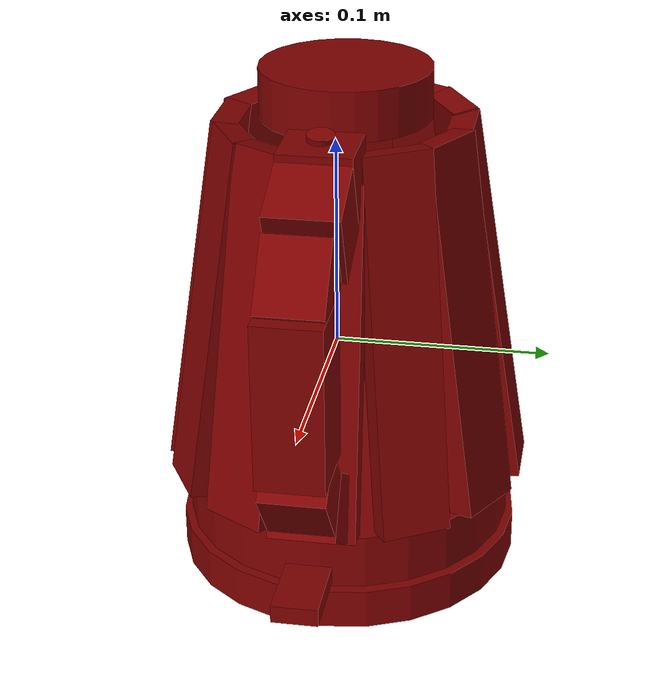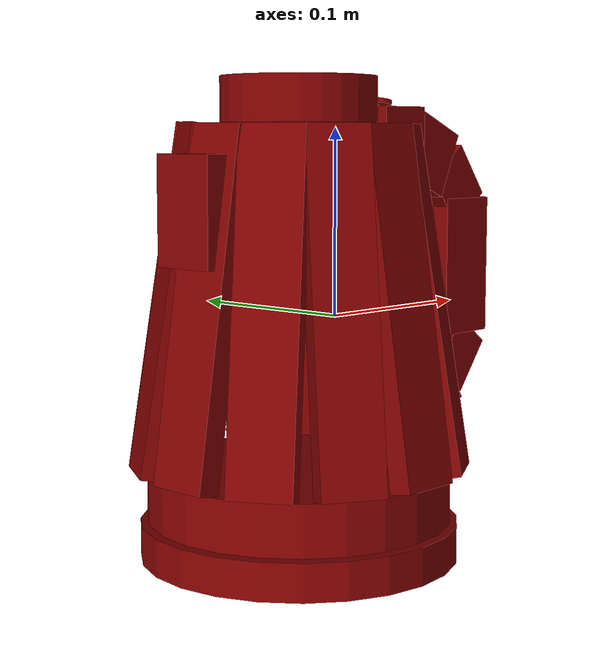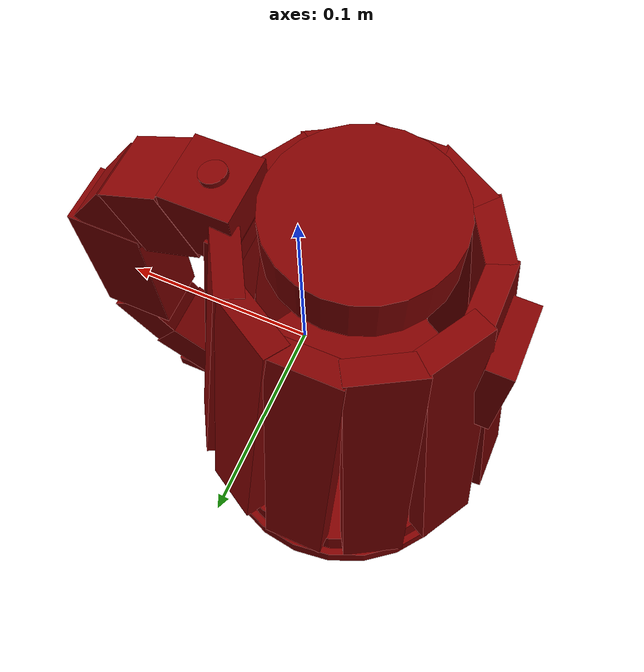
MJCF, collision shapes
<?xml version='1.0' encoding='UTF-8'?>
<mujoco model="model">
  <option timestep="0.002" gravity="0.0 0.0 -9.81"/>
  <compiler angle="radian"/>
  <asset>
    <mesh file="visuals/button_lid.obj" name="button_lid_vis"/>
    <mesh file="visuals/Body001.obj" name="Body001_vis"/>
    <mesh file="visuals/kettle_main.obj" name="kettle_main_vis"/>
    <mesh file="visuals/lid.obj" name="lid_vis"/>
    <mesh file="visuals/switch.obj" name="switch_vis"/>
    <texture file="visuals/T_BC001.png" name="Body001_material" type="2d"/>
    <material name="Body001_material" rgba="1 1 1 1.0" texture="Body001_material" shininess="0.1" specular="5"/>
    <texture file="visuals/T_BC001.png" name="kettle_main_material" type="2d"/>
    <material name="kettle_main_material" rgba="1 1 1 1.0" texture="kettle_main_material" shininess="0.1" specular="5"/>
    <texture file="visuals/T_BC001.png" name="button_lid_material" type="2d"/>
    <material name="button_lid_material" rgba="1 1 1 1.0" texture="button_lid_material" shininess="0.1" specular="5"/>
    <texture file="visuals/T_BC001.png" name="lid_material" type="2d"/>
    <material name="lid_material" rgba="1 1 1 1.0" texture="lid_material" shininess="0.1" specular="5"/>
    <texture file="visuals/T_BC001.png" name="switch_material" type="2d"/>
    <material name="switch_material" rgba="1 1 1 1.0" texture="switch_material" shininess="0.1" specular="5"/>
  </asset>
  <default>
    <default class="visual">
      <geom conaffinity="0" contype="0" group="1" type="mesh"/>
    </default>
    <default class="collision">
      <geom group="0" rgba="0.5 0 0 0.5"/>
    </default>
    <default class="spawn">
      <geom group="0" rgba="1 1 1 0.5" contype="0" conaffinity="0"/>
      <site group="0" rgba="1 1 1 0.5"/>
    </default>
    <default class="region">
      <geom group="1" conaffinity="0" contype="0" rgba="0 1 0 0" mass="0"/>
    </default>
  </default>
  <worldbody>
    <body>
      <body name="object">
        <geom mesh="Body001_vis" type="mesh" solimp="0.998 0.998 0.001" solref="0.001 1" friction="0.95 0.3 0.1" class="visual" material="Body001_material"/>
        <geom type="cylinder" pos="-0.027123715728521347 0.0006314236670732498 -0.11536509543657303" size="0.0840601013302803 0.009835515171289444" quat="1.0 0.0 0.0 0.0" class="collision"/>
        <body name="kettle_main">
          <geom mesh="kettle_main_vis" type="mesh" solimp="0.998 0.998 0.001" solref="0.001 1" friction="0.95 0.3 0.1" class="visual" material="kettle_main_material"/>
          <geom type="cylinder" pos="-0.027123715728521347 0.0006314236670732498 -0.09106379747390747" size="0.08028148114681244 0.013414045795798302" quat="1.0 0.0 0.0 0.0" class="collision"/>
          <geom type="box" pos="-0.029719935730099678 0.0678422674536705 0.01245046965777874" size="0.01667201519012451 0.00625108927488327 0.08973126858472824" quat="0.9969461560249329 0.07809212803840637 0.0 0.0" class="collision"/>
          <geom type="box" pos="0.0044008586555719376 0.05956077575683594 0.012839394621551037" size="0.01667201519012451 0.00625108927488327 0.09012499451637268" quat="0.9629760384559631 0.0754312127828598 -0.020211733877658844 -0.25802865624427795" class="collision"/>
          <geom type="box" pos="0.02979552559554577 0.03535568341612816 0.01316695287823677" size="0.01667201519012451 0.006251089740544558 0.09045659750699997" quat="0.8633805513381958 0.06762980669736862 -0.03904610499739647 -0.49847328662872314" class="collision"/>
          <geom type="box" pos="0.04109631106257439 0.001721933949738741 0.00760232238098979" size="0.01667201519012451 0.006734172813594341 0.08474710583686829" quat="0.7049473524093628 0.055219486355781555 -0.055219486355781555 -0.7049474120140076" class="collision"/>
          <geom type="box" pos="0.031629934906959534 -0.032438334077596664 0.012338511645793915" size="0.01667201519012451 0.00625108927488327 0.08961792290210724" quat="0.49847304821014404 0.03904607146978378 -0.06762978434562683 -0.8633807301521301" class="collision"/>
          <geom type="box" pos="-0.08589640259742737 -0.03541430085897446 0.012407590635120869" size="0.01667201519012451 0.006251089740544558 0.08968786150217056" quat="0.4984731376171112 0.03904608264565468 0.06762977689504623 0.8633806705474854" class="collision"/>
          <geom type="box" pos="-0.060435935854911804 -0.059625107795000076 0.012359224259853363" size="0.01667201519012451 0.00625108927488327 0.08963889628648758" quat="0.25802868604660034 0.02021173946559429 0.075431227684021 0.9629760384559631" class="collision"/>
          <geom type="box" pos="-0.02627730555832386 -0.06785797327756882 0.012343070469796658" size="0.01667201519012451 0.00625108927488327 0.08962254226207733" quat="1.9411258733725845e-07 1.5205101178139557e-08 0.07809213548898697 0.9969461560249329" class="collision"/>
          <geom type="box" pos="0.007429031655192375 -0.057919204235076904 0.012246241793036461" size="0.01667201519012451 0.00625108927488327 0.0895245149731636" quat="0.25802868604660034 0.020211732015013695 -0.0754312053322792 -0.9629760384559631" class="collision"/>
          <geom type="box" pos="-0.09584486484527588 -0.0017207142664119601 0.012421312741935253" size="0.01667201519012451 0.00625108927488327 0.08970174938440323" quat="0.7049474120140076 0.05521947145462036 0.05521947145462036 0.7049473524093628" class="collision"/>
          <geom type="box" pos="-0.08756893873214722 0.03240600973367691 0.012764760293066502" size="0.01667201519012451 0.006251089740544558 0.09004943817853928" quat="0.8633806705474854 0.06762980669736862 0.03904609754681587 0.49847307801246643" class="collision"/>
          <geom type="box" pos="-0.06337998807430267 0.05784034729003906 0.012832971289753914" size="0.01667201519012451 0.006251089740544558 0.09011849015951157" quat="0.9629760384559631 0.07543117552995682 0.0202117171138525 0.2580285668373108" class="collision"/>
          <geom class="collision" type="box" pos="0.09487435221672058 -0.0006461533484980464 0.021886680275201797" size="0.018629450350999832 0.015418626368045807 0.038655154407024384" quat="1.0 0.0 0.0 0.0" name="handle_main"/>
          <geom class="collision" type="box" pos="0.06437619775533676 -0.0006461533484980464 -0.05335995554924011" size="0.015751056373119354 0.015418626368045807 0.022757533937692642" quat="0.878239095211029 0.0 0.4782218337059021 0.0" name="handle_5"/>
          <geom class="collision" type="box" pos="0.062314487993717194 0.00021466927137225866 0.08514516055583954" size="0.018561823293566704 0.016870688647031784 0.016103072091937065" quat="0.8356542587280273 0.0 -0.5492557883262634 0.0" name="handle_2"/>
          <geom class="collision" type="box" pos="0.09111899137496948 -0.0006081165629439056 -0.02947823703289032" size="0.01297727506607771 0.015142733231186867 0.017246974632143974" quat="0.9485732316970825 0.0 0.31655776500701904 0.0" name="handle_4"/>
          <geom class="collision" type="box" pos="0.08661127835512161 -0.0006081165629439056 0.06763394176959991" size="0.015279310755431652 0.015142733231186867 0.017246974632143974" quat="0.9485732316970825 0.0 -0.31655776500701904 0.0" name="handle_3"/>
          <geom class="collision" type="box" pos="0.03746698051691055 -1.5689176507294178e-05 0.09416995942592621" size="0.016039220616221428 0.01697361469268799 0.017141206189990044" quat="1.0 0.0 0.0 0.0" name="handle_1"/>
          <geom type="box" pos="-0.09690244495868683 0.005997326225042343 0.05929330736398697" size="0.006280609406530857 0.018092377111315727 0.027771886438131332" quat="1.0 0.0 0.0 0.0" class="collision"/>
          <body name="button_lid">
            <joint axis="-0.1648770272731781 0.0 -0.9863141775131226" pos="0.035936906933784485 0.0 0.11288760602474213" limited="true" name="button_lid_joint" range="0.0 0.0018" type="slide" damping="1" frictionloss="1" armature=".01" stiffness="0.05" springref="-1"/>
            <geom mesh="button_lid_vis" type="mesh" solimp="0.998 0.998 0.001" solref="0.001 1" friction="0.95 0.3 0.1" class="visual" material="button_lid_material"/>
            <geom class="collision" type="cylinder" pos="0.03621174022555351 0.0 0.1140049546957016" size="0.0062545607797801495 0.0012471199734136462" quat="0.9963867664337158 0.0 0.08493169397115707 0.0" name="button_lid_main"/>
          </body>
          <body name="lid">
            <joint axis="0.0 1.0 0.0" pos="0.013305006548762321 0.00018151476979255676 0.11327150464057922" limited="true" name="lid_joint" range="0.0 1.5707963267948966" type="hinge" damping="1" frictionloss="0.1" armature=".01" stiffness="0.05" springref="-6"/>
            <geom mesh="lid_vis" type="mesh" solimp="0.998 0.998 0.001" solref="0.001 1" friction="0.95 0.3 0.1" class="visual" material="lid_material"/>
            <geom class="collision" type="cylinder" pos="-0.02811012789607048 -3.936994471587241e-05 0.11419539153575897" size="0.04046454784274101 0.01173013262450695" quat="1.0 0.0 0.0 0.0" name="lid_main"/>
          </body>
          <body name="switch">
            <joint axis="0.0 1.0 0.0" pos="0.04427003115415573 -0.005025052931159735 -0.09788975119590759" limited="true" name="switch_joint" range="0.0 0.1341592653589793" type="hinge" damping="1" frictionloss="1" armature=".01" stiffness="0.05" springref="-5"/>
            <geom mesh="switch_vis" type="mesh" solimp="0.998 0.998 0.001" solref="0.001 1" friction="0.95 0.3 0.1" class="visual" material="switch_material"/>
            <geom class="collision" type="box" pos="0.07150208950042725 -0.005038935225456953 -0.09745471179485321" size="0.01746952347457409 0.011046938598155975 0.0044119711965322495" quat="1.0 0.0 0.0 0.0" name="switch_main"/>
          </body>
        </body>
        <geom class="region" name="reg_main" type="box" pos="-1.862645149230957e-09 -7.450580596923828e-09 0.0" size="0.11380138045549393 0.0858034992814064 0.12600250339508057"/>
      </body>
    </body>
  </worldbody>
  <actuator>
    <motor name="button_lid_joint_actuator" joint="button_lid_joint" gear="0.5"/>
    <motor name="lid_joint_actuator" joint="lid_joint" gear="0.5"/>
    <motor name="switch_joint_actuator" joint="switch_joint" gear="0.5"/>
  </actuator>
</mujoco>
